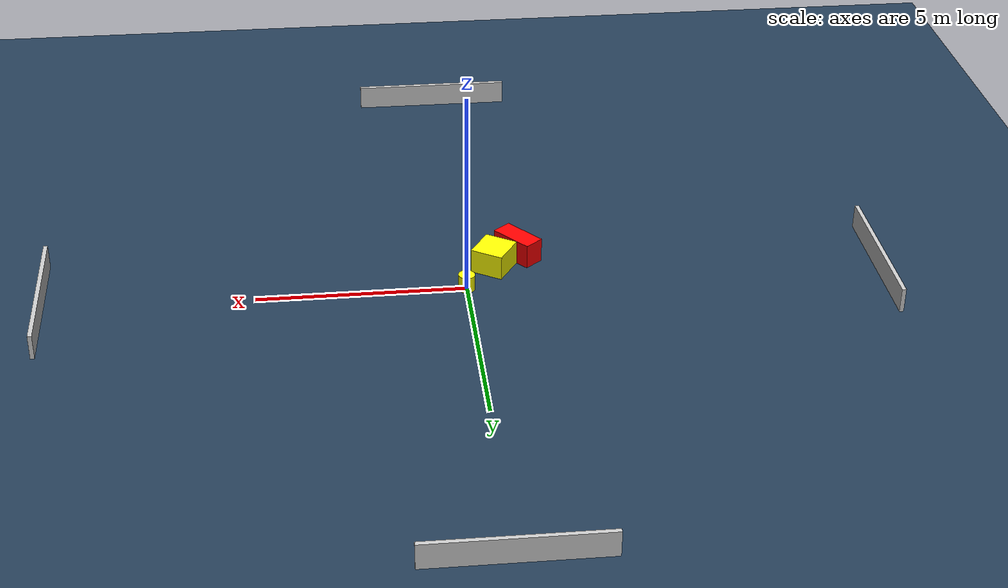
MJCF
<?xml version="1.0" ?>
<mujoco model="generated_environment">
  <option timestep="0.01" integrator="RK4" cone="elliptic"/>
  <default>
    <geom density="1"/>
  </default>
  <asset>
    <texture builtin="gradient" height="3072" name="skybox" rgb1="0.3 0.5 0.7" rgb2="0 0 0" type="skybox" width="512"/>
    <texture builtin="checker" height="300" name="groundplane" rgb1="0.2 0.3 0.4" rgb2="0.1 0.2 0.3" type="2d" width="300"/>
    <material name="groundplane" reflectance="0.2" texrepeat="5 5" texture="groundplane"/>
  </asset>
  <worldbody>
    <light dir="0 0 -1" directional="true" pos="0 0 1.5"/>
    <geom condim="3" friction="0.5 0.005 0.001" material="groundplane" name="floor" pos="0 0 0" size="0 0 0.05" type="plane"/>
    <body name="walls">
      <geom name="wall_1" condim="4" pos="-10.0 0.0 0.3" rgba="0.800000011920929 0.800000011920929 0.800000011920929 1.0" size="0.05 2.0 0.3" type="box"/>
      <geom name="wall_2" condim="4" pos="10.0 0.0 0.3" rgba="0.800000011920929 0.800000011920929 0.800000011920929 1.0" size="0.05 2.0 0.3" type="box"/>
      <geom name="wall_3" condim="4" pos="0.0 -10.0 0.3" rgba="0.800000011920929 0.800000011920929 0.800000011920929 1.0" size="2.0 0.05 0.3" type="box"/>
      <geom name="wall_4" condim="4" pos="0.0 10.0 0.3" rgba="0.800000011920929 0.800000011920929 0.800000011920929 1.0" size="2.0 0.05 0.3" type="box"/>
    </body>
    <body name="robot">
      <joint name="joint_x" type="slide" pos="0 0 0" axis="1 0 0"/>
      <joint name="joint_y" type="slide" pos="0 0 0" axis="0 1 0"/>
      <geom name="robot" type="cylinder" pos="0.0 0.0 0.2" size="0.2 0.2 0.0" mass="5.0" friction="1.0 0.005 0.0001" condim="4" rgba="1.0 1.0 0.0 1.0"/>
    </body>
    <body name="obstacle_1_movable">
      <geom name="obstacle_1_movable" condim="4" pos="-0.7526735093282533 -0.9215648598243857 0.3" euler="0 0 237.9308359910564" friction="0.0 0.005 0.001" rgba="1.0 1.0 0.0 1.0" size="0.42843966455247423 0.4062044004046277 0.3" type="box" mass="0.1"/>
      <joint type="free"/>
    </body>
    <body name="obstacle_2_static">
      <geom name="obstacle_2_static" condim="4" pos="-1.387955057370016 -1.3979877840994113 0.3" euler="0 0 129.6479662069945" friction="0.0 0.005 0.001" rgba="1.0 0.0 0.0 1.0" size="0.5538206889435154 0.2541104135416474 0.3" type="box"/>
    </body>
  </worldbody>
  <actuator>
    <motor name="actuator_x" joint="joint_x" gear="1" ctrlrange="-1 1"/>
    <motor name="actuator_y" joint="joint_y" gear="1" ctrlrange="-1 1"/>
  </actuator>
</mujoco>
